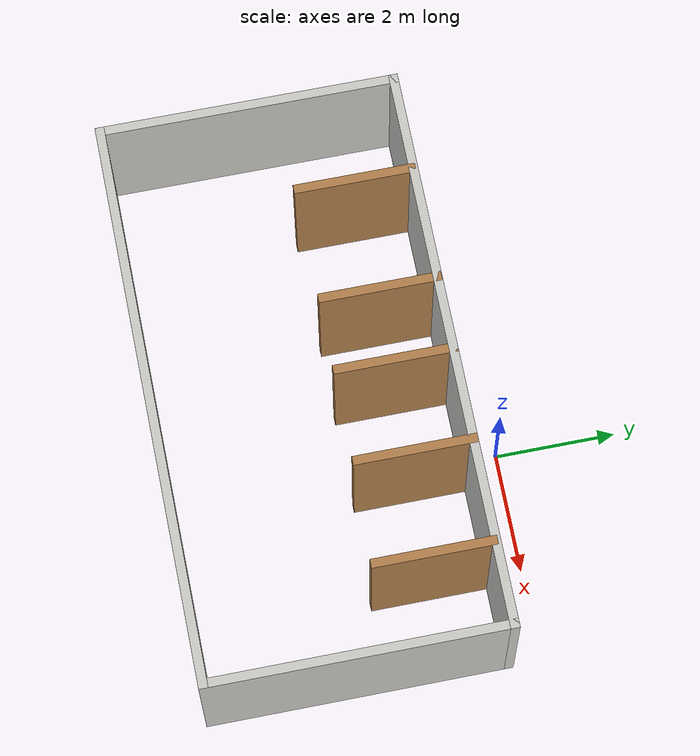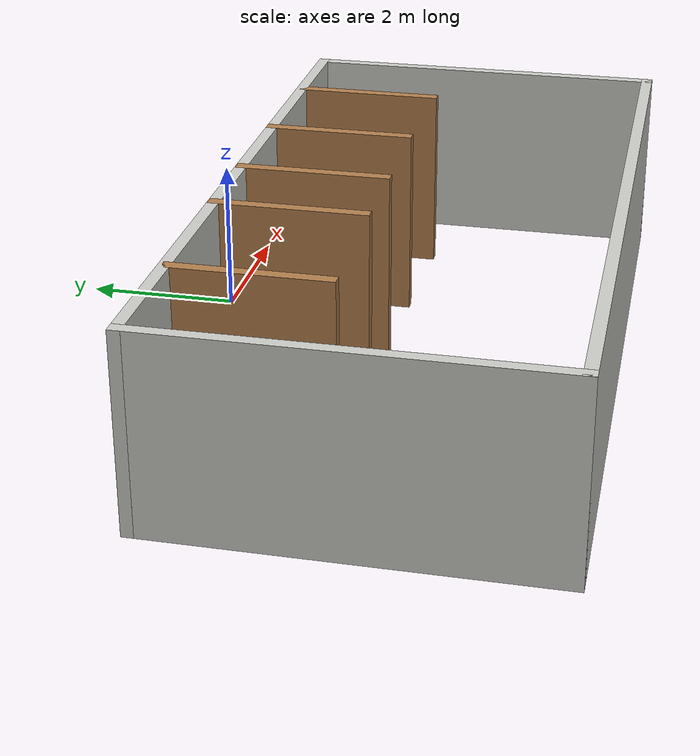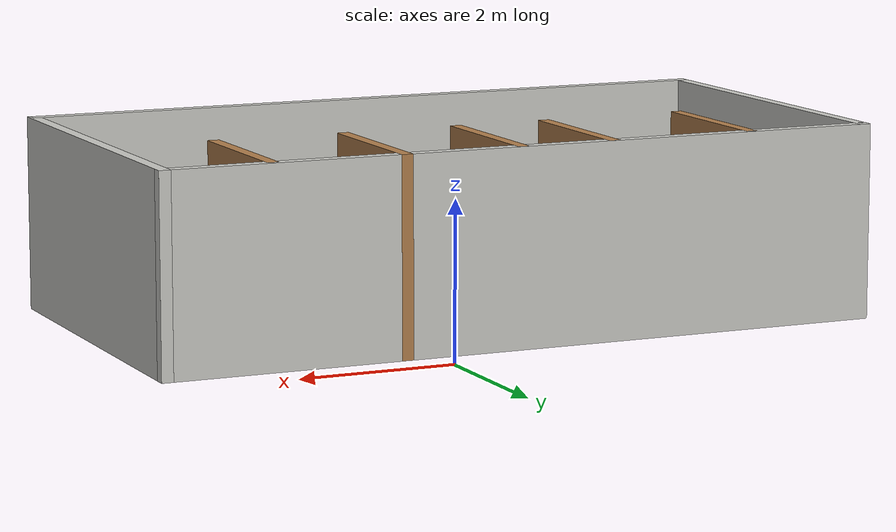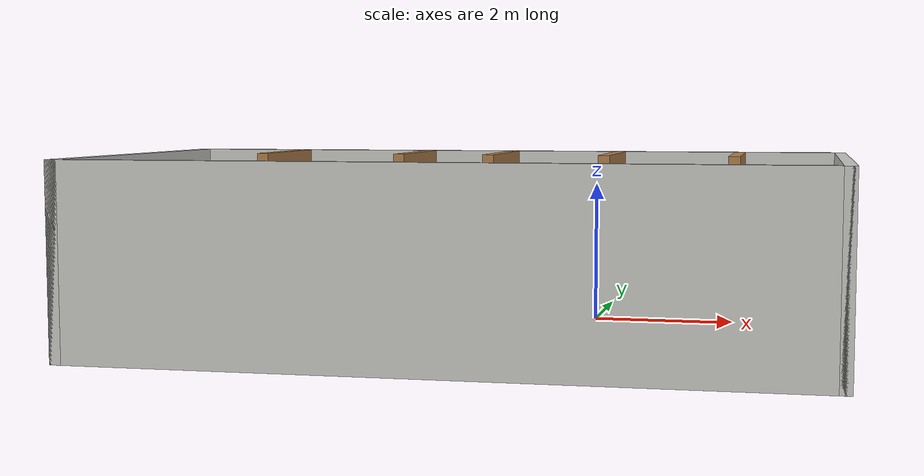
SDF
<?xml version='1.0'?>
<sdf version='1.7'>
  <model name='room'>
    <pose>-1.215 -2.7325 0 0 -0 0</pose>
    <link name='Wall_0'>
      <collision name='Wall_0_Collision'>
        <geometry>
          <box>
            <size>5 0.15 2.5</size>
          </box>
        </geometry>
        <pose>0 0 1.25 0 -0 0</pose>
      </collision>
      <visual name='Wall_0_Visual'>
        <pose>0 0 1.25 0 -0 0</pose>
        <geometry>
          <box>
            <size>5 0.15 2.5</size>
          </box>
        </geometry>
        <material>
          <script>
            <uri>file://media/materials/scripts/gazebo.material</uri>
            <name>Gazebo/CeilingTiled</name>
          </script>
          <ambient>1 1 1 1</ambient>
        </material>
        <meta>
          <layer>0</layer>
        </meta>
      </visual>
      <pose>-4.675 -0.2325 0 0 -0 -1.5708</pose>
    </link>
    <link name='Wall_10'>
      <collision name='Wall_10_Collision'>
        <geometry>
          <box>
            <size>2 0.15 2.5</size>
          </box>
        </geometry>
        <pose>0 0 1.25 0 -0 0</pose>
      </collision>
      <visual name='Wall_10_Visual'>
        <pose>0 0 1.25 0 -0 0</pose>
        <geometry>
          <box>
            <size>2 0.15 2.5</size>
          </box>
        </geometry>
        <material>
          <script>
            <uri>file://media/materials/scripts/gazebo.material</uri>
            <name>Gazebo/Wood</name>
          </script>
          <ambient>1 1 1 1</ambient>
        </material>
        <meta>
          <layer>0</layer>
        </meta>
      </visual>
      <pose>-1.145 1.2575 0 0 -0 -1.5708</pose>
    </link>
    <link name='Wall_12'>
      <collision name='Wall_12_Collision'>
        <geometry>
          <box>
            <size>2 0.15 2.5</size>
          </box>
        </geometry>
        <pose>0 0 1.25 0 -0 0</pose>
      </collision>
      <visual name='Wall_12_Visual'>
        <pose>0 0 1.25 0 -0 0</pose>
        <geometry>
          <box>
            <size>2 0.15 2.5</size>
          </box>
        </geometry>
        <material>
          <script>
            <uri>file://media/materials/scripts/gazebo.material</uri>
            <name>Gazebo/Wood</name>
          </script>
          <ambient>1 1 1 1</ambient>
        </material>
        <meta>
          <layer>0</layer>
        </meta>
      </visual>
      <pose>0.085 1.2575 0 0 -0 -1.5708</pose>
    </link>
    <link name='Wall_15'>
      <collision name='Wall_15_Collision'>
        <geometry>
          <box>
            <size>2 0.15 2.5</size>
          </box>
        </geometry>
        <pose>0 0 1.25 0 -0 0</pose>
      </collision>
      <visual name='Wall_15_Visual'>
        <pose>0 0 1.25 0 -0 0</pose>
        <geometry>
          <box>
            <size>2 0.15 2.5</size>
          </box>
        </geometry>
        <material>
          <script>
            <uri>file://media/materials/scripts/gazebo.material</uri>
            <name>Gazebo/Wood</name>
          </script>
          <ambient>1 1 1 1</ambient>
        </material>
        <meta>
          <layer>0</layer>
        </meta>
      </visual>
      <pose>1.625 1.2675 0 0 -0 -1.5708</pose>
    </link>
    <link name='Wall_17'>
      <collision name='Wall_17_Collision'>
        <geometry>
          <box>
            <size>2 0.15 2.5</size>
          </box>
        </geometry>
        <pose>0 0 1.25 0 -0 0</pose>
      </collision>
      <visual name='Wall_17_Visual'>
        <pose>0 0 1.25 0 -0 0</pose>
        <geometry>
          <box>
            <size>2 0.15 2.5</size>
          </box>
        </geometry>
        <material>
          <script>
            <uri>file://media/materials/scripts/gazebo.material</uri>
            <name>Gazebo/Wood</name>
          </script>
          <ambient>1 1 1 1</ambient>
        </material>
        <meta>
          <layer>0</layer>
        </meta>
      </visual>
      <pose>3.315 1.2175 0 0 -0 -1.5708</pose>
    </link>
    <link name='Wall_2'>
      <collision name='Wall_2_Collision'>
        <geometry>
          <box>
            <size>9.5 0.15 2.5</size>
          </box>
        </geometry>
        <pose>0 0 1.25 0 -0 0</pose>
      </collision>
      <visual name='Wall_2_Visual'>
        <pose>0 0 1.25 0 -0 0</pose>
        <geometry>
          <box>
            <size>9.5 0.15 2.5</size>
          </box>
        </geometry>
        <material>
          <script>
            <uri>file://media/materials/scripts/gazebo.material</uri>
            <name>Gazebo/CeilingTiled</name>
          </script>
          <ambient>1 1 1 1</ambient>
        </material>
        <meta>
          <layer>0</layer>
        </meta>
      </visual>
      <pose>-0 -2.6575 0 0 -0 0</pose>
    </link>
    <link name='Wall_4'>
      <collision name='Wall_4_Collision'>
        <geometry>
          <box>
            <size>5 0.15 2.5</size>
          </box>
        </geometry>
        <pose>0 0 1.25 0 -0 0</pose>
      </collision>
      <visual name='Wall_4_Visual'>
        <pose>0 0 1.25 0 -0 0</pose>
        <geometry>
          <box>
            <size>5 0.15 2.5</size>
          </box>
        </geometry>
        <material>
          <script>
            <uri>file://media/materials/scripts/gazebo.material</uri>
            <name>Gazebo/CeilingTiled</name>
          </script>
          <ambient>1 1 1 1</ambient>
        </material>
        <meta>
          <layer>0</layer>
        </meta>
      </visual>
      <pose>4.675 -0.2325 0 0 -0 1.5708</pose>
    </link>
    <link name='Wall_6'>
      <collision name='Wall_6_Collision'>
        <geometry>
          <box>
            <size>9.5 0.15 2.5</size>
          </box>
        </geometry>
        <pose>0 0 1.25 0 -0 0</pose>
      </collision>
      <visual name='Wall_6_Visual'>
        <pose>0 0 1.25 0 -0 0</pose>
        <geometry>
          <box>
            <size>9.5 0.15 2.5</size>
          </box>
        </geometry>
        <material>
          <script>
            <uri>file://media/materials/scripts/gazebo.material</uri>
            <name>Gazebo/CeilingTiled</name>
          </script>
          <ambient>1 1 1 1</ambient>
        </material>
        <meta>
          <layer>0</layer>
        </meta>
      </visual>
      <pose>-0 2.1925 0 0 -0 3.14159</pose>
    </link>
    <link name='Wall_8'>
      <collision name='Wall_8_Collision'>
        <geometry>
          <box>
            <size>2 0.15 2.5</size>
          </box>
        </geometry>
        <pose>0 0 1.25 0 -0 0</pose>
      </collision>
      <visual name='Wall_8_Visual'>
        <pose>0 0 1.25 0 -0 0</pose>
        <geometry>
          <box>
            <size>2 0.15 2.5</size>
          </box>
        </geometry>
        <material>
          <script>
            <uri>file://media/materials/scripts/gazebo.material</uri>
            <name>Gazebo/Wood</name>
          </script>
          <ambient>1 1 1 1</ambient>
        </material>
        <meta>
          <layer>0</layer>
        </meta>
      </visual>
      <pose>-3.065 1.2275 0 0 -0 -1.5708</pose>
    </link>
    <static>1</static>
  </model>
</sdf>
